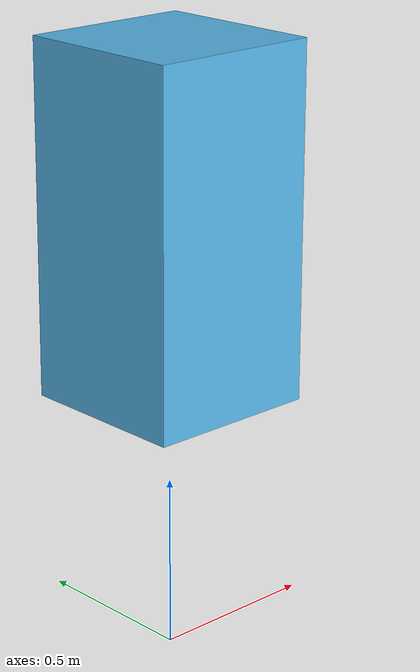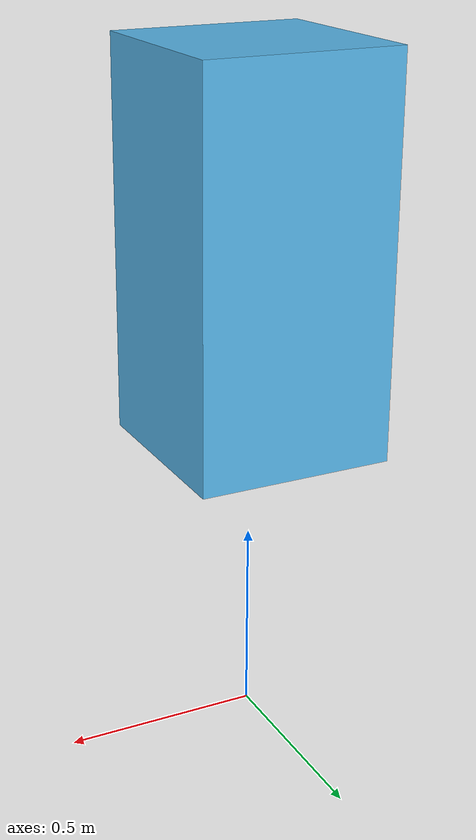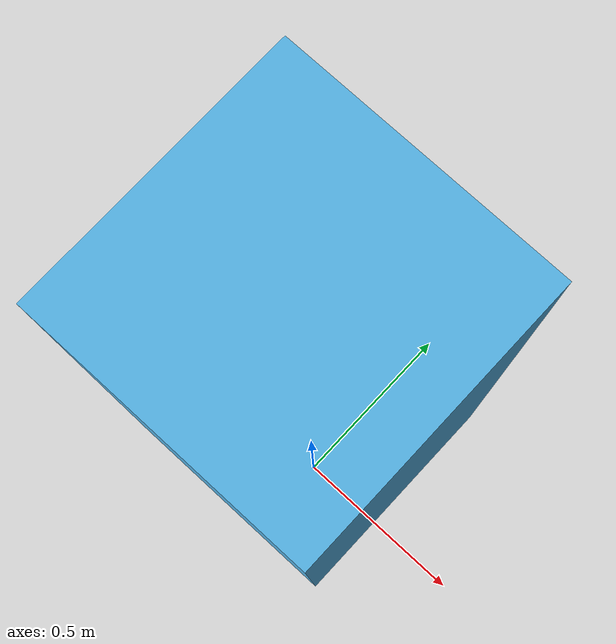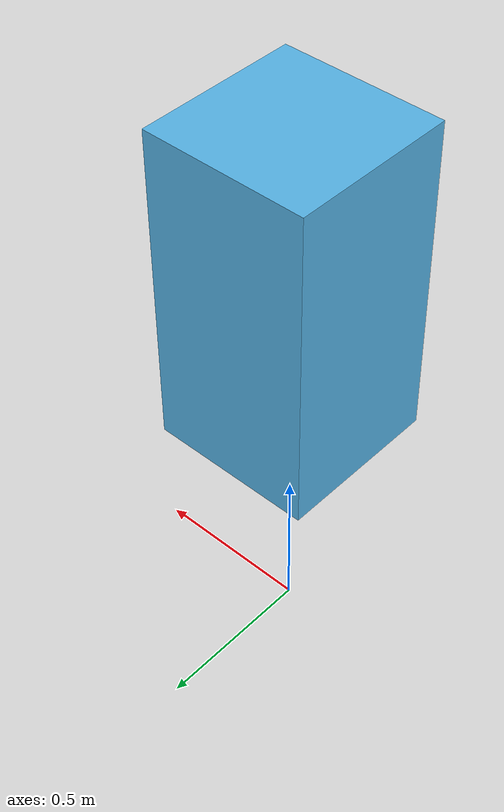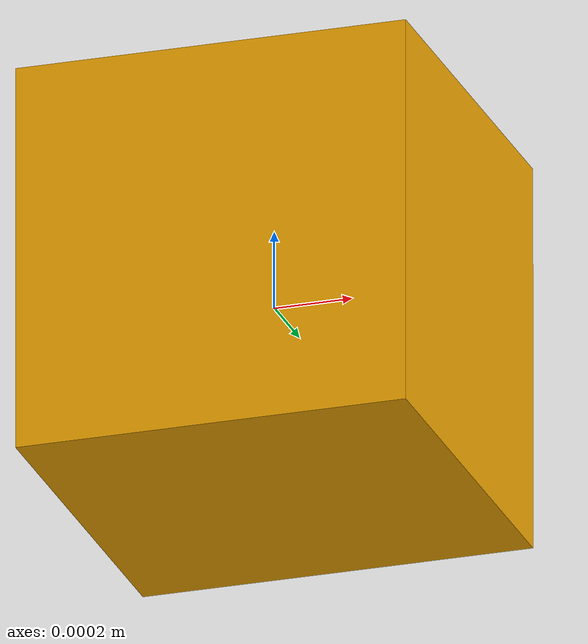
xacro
<?xml version='1.0'?>
<robot name="test_model" xmlns:xacro="http://www.ros.org/wiki/xacro">

  <!-- root link, on the ground just below the model origin -->
  <link name="base_footprint">
   <visual>
      <origin xyz="0 0 0" rpy="0 0 0" />
      <geometry>
        <box size="0.001 0.001 0.001" />
      </geometry>
    </visual>
  </link>

  <joint name="base_link_joint" type="fixed">
    <origin xyz="0.0 0 1.25" rpy="0 0 0" />
    <parent link="base_footprint"/>
    <child link="base_link" />
  </joint>

  <!-- the model -->
  <link name="base_link">
    <inertial>
      <mass value="50" />
      <origin xyz="0 0 -1.25" />
      <inertia ixx="50.0" ixy="0.0" ixz="0.0"
        iyy="50.0" iyz="0.0"
        izz="50.0" />
    </inertial>
    <visual>
      <geometry>
        <box size="0.5 0.5 1.0" /> <!-- does not need to match collision -->
      </geometry>
    </visual>
    <collision>
      <origin xyz="0 0 -1.0" />
      <geometry>
        <cylinder length="0.5" radius="0.25" />
      </geometry>
    </collision>
  </link>

  <gazebo>
    <plugin name="object_controller" filename="libgazebo_ros_planar_move.so">

      <ros>
        <!-- Add a namespace -->
        <remapping>cmd_vel:=cmd_vel</remapping>
        <remapping>odom:=odom</remapping>
      </ros>

      <update_rate>100</update_rate>
      <publish_rate>20</publish_rate>

      <publish_odom>true</publish_odom>
      <publish_odom_tf>true</publish_odom_tf>

      <odometry_frame>odom</odometry_frame>
      <robot_base_frame>base_footprint</robot_base_frame>

    </plugin>
  </gazebo>

</robot>
